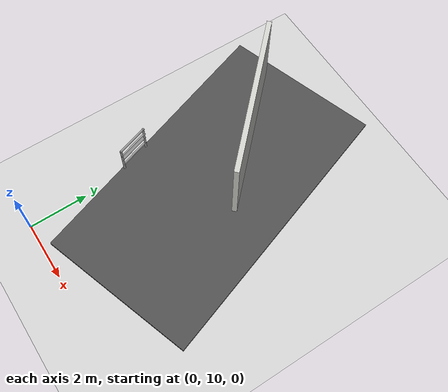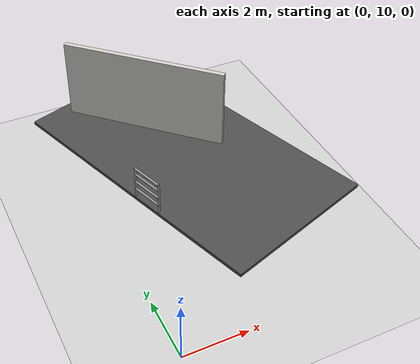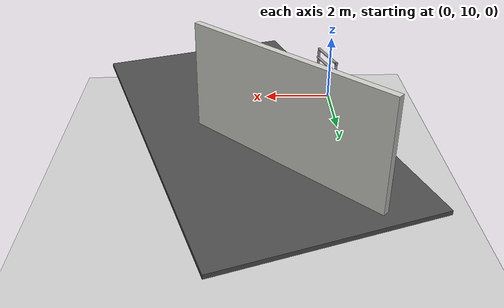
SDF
<sdf version="1.6">
 <world name="default">
  <model name="ground_plane">
   <static>1</static>
   <link name="link">
    <collision name="collision">
     <geometry><plane><normal>0 0 1</normal><size>100 100</size></plane></geometry>
     <surface><friction><ode><mu>100</mu><mu2>50</mu2></ode></friction></surface>
    </collision>
    <visual name="visual">
     <cast_shadows>0</cast_shadows>
     <geometry><plane><normal>0 0 1</normal><size>100 100</size></plane></geometry>
     <material>
      <script><uri>file://media/materials/scripts/gazebo.material</uri><name>Gazebo/Grey</name></script>
     </material>
    </visual>
   </link>
  </model>
  <model name="Untitled_1_0_clone_clone_0">
   <pose>0.845159 15.7579 2.03023 0 -0 2.36363</pose>
   <link name="Wall_16">
    <collision name="Wall_16_Collision">
     <geometry><box><size>5 0.15 2.5</size></box></geometry>
     <pose>0 0 1.25 0 -0 0</pose>
    </collision>
    <visual name="Wall_16_Visual">
     <pose>0 0 1.25 0 -0 0</pose>
     <geometry><box><size>5 0.15 2.5</size></box></geometry>
     <material>
      <script><uri>file://media/materials/scripts/gazebo.material</uri><name>Gazebo/CeilingTiled</name></script>
      <ambient>1 1 1 1</ambient>
     </material>
     <meta><layer>0</layer></meta>
    </visual>
    <pose>0 -1.66958 0 0 -0 0</pose>
   </link>
   <static>1</static>
  </model>
  <model name="indoor_fence_2">
   <link name="link">
    <inertial>
     <mass>1</mass>
     <inertia><ixx>0.145833</ixx><ixy>0</ixy><ixz>0</ixz><iyy>0.145833</iyy><iyz>0</iyz><izz>0.125</izz></inertia>
    </inertial>
    <pose>0.071704 -0.128855 0 0 -0 0</pose>
    <visual name="visual">
     <geometry><cylinder><radius>0.0332942</radius><length>1</length></cylinder></geometry>
     <material>
      <script><name>Gazebo/Grey</name><uri>file://media/materials/scripts/gazebo.material</uri></script>
      <shader type="pixel"/>
     </material>
    </visual>
    <collision name="collision">
     <geometry><cylinder><radius>0.033294</radius><length>1</length></cylinder></geometry>
     <surface>
      <friction>
       <ode><mu>1</mu><mu2>1</mu2><fdir1>0 0 0</fdir1><slip1>0</slip1><slip2>0</slip2></ode>
       <torsional>
        <coefficient>1</coefficient>
        <patch_radius>0</patch_radius>
        <surface_radius>0</surface_radius>
        <use_patch_radius>1</use_patch_radius>
        <ode><slip>0</slip></ode>
       </torsional>
      </friction>
      <bounce><restitution_coefficient>0</restitution_coefficient><threshold>1e+06</threshold></bounce>
      <contact>
       <collide_without_contact>0</collide_without_contact>
       <collide_without_contact_bitmask>1</collide_without_contact_bitmask>
       <collide_bitmask>1</collide_bitmask>
       <ode>
        <soft_cfm>0</soft_cfm>
        <soft_erp>0.2</soft_erp>
        <kp>1e+13</kp>
        <kd>1</kd>
        <max_vel>0.01</max_vel>
        <min_depth>0</min_depth>
       </ode>
       <bullet>
        <split_impulse>1</split_impulse>
        <split_impulse_penetration_threshold>-0.01</split_impulse_penetration_threshold>
        <soft_cfm>0</soft_cfm>
        <soft_erp>0.2</soft_erp>
        <kp>1e+13</kp>
        <kd>1</kd>
       </bullet>
      </contact>
     </surface>
    </collision>
   </link>
   <link name="link_clone">
    <inertial>
     <mass>1</mass>
     <inertia><ixx>0.145833</ixx><ixy>0</ixy><ixz>0</ixz><iyy>0.145833</iyy><iyz>0</iyz><izz>0.125</izz></inertia>
    </inertial>
    <pose>0.369391 -1.02864 0 0 -0 0</pose>
    <visual name="visual">
     <geometry><cylinder><radius>0.0332942</radius><length>1</length></cylinder></geometry>
     <material>
      <script><name>Gazebo/Grey</name><uri>file://media/materials/scripts/gazebo.material</uri></script>
      <shader type="pixel"/>
     </material>
    </visual>
    <collision name="collision">
     <geometry><cylinder><radius>0.033294</radius><length>1</length></cylinder></geometry>
     <surface>
      <friction>
       <ode><mu>1</mu><mu2>1</mu2><fdir1>0 0 0</fdir1><slip1>0</slip1><slip2>0</slip2></ode>
       <torsional>
        <coefficient>1</coefficient>
        <patch_radius>0</patch_radius>
        <surface_radius>0</surface_radius>
        <use_patch_radius>1</use_patch_radius>
        <ode><slip>0</slip></ode>
       </torsional>
      </friction>
      <bounce><restitution_coefficient>0</restitution_coefficient><threshold>1e+06</threshold></bounce>
      <contact>
       <collide_without_contact>0</collide_without_contact>
       <collide_without_contact_bitmask>1</collide_without_contact_bitmask>
       <collide_bitmask>1</collide_bitmask>
       <ode>
        <soft_cfm>0</soft_cfm>
        <soft_erp>0.2</soft_erp>
        <kp>1e+13</kp>
        <kd>1</kd>
        <max_vel>0.01</max_vel>
        <min_depth>0</min_depth>
       </ode>
       <bullet>
        <split_impulse>1</split_impulse>
        <split_impulse_penetration_threshold>-0.01</split_impulse_penetration_threshold>
        <soft_cfm>0</soft_cfm>
        <soft_erp>0.2</soft_erp>
        <kp>1e+13</kp>
        <kd>1</kd>
       </bullet>
      </contact>
     </surface>
    </collision>
   </link>
   <link name="link_clone_0">
    <inertial>
     <mass>1</mass>
     <inertia><ixx>0.145833</ixx><ixy>0</ixy><ixz>0</ixz><iyy>0.145833</iyy><iyz>0</iyz><izz>0.125</izz></inertia>
    </inertial>
    <pose>0.220035 -0.575022 -0.262394 -1.57275 0.000646 0.319166</pose>
    <visual name="visual">
     <geometry><cylinder><radius>0.0332942</radius><length>1</length></cylinder></geometry>
     <material>
      <script><name>Gazebo/Grey</name><uri>file://media/materials/scripts/gazebo.material</uri></script>
      <shader type="pixel"/>
     </material>
    </visual>
    <collision name="collision">
     <geometry><cylinder><radius>0.033294</radius><length>1</length></cylinder></geometry>
     <surface>
      <friction>
       <ode><mu>1</mu><mu2>1</mu2><fdir1>0 0 0</fdir1><slip1>0</slip1><slip2>0</slip2></ode>
       <torsional>
        <coefficient>1</coefficient>
        <patch_radius>0</patch_radius>
        <surface_radius>0</surface_radius>
        <use_patch_radius>1</use_patch_radius>
        <ode><slip>0</slip></ode>
       </torsional>
      </friction>
      <bounce><restitution_coefficient>0</restitution_coefficient><threshold>1e+06</threshold></bounce>
      <contact>
       <collide_without_contact>0</collide_without_contact>
       <collide_without_contact_bitmask>1</collide_without_contact_bitmask>
       <collide_bitmask>1</collide_bitmask>
       <ode>
        <soft_cfm>0</soft_cfm>
        <soft_erp>0.2</soft_erp>
        <kp>1e+13</kp>
        <kd>1</kd>
        <max_vel>0.01</max_vel>
        <min_depth>0</min_depth>
       </ode>
       <bullet>
        <split_impulse>1</split_impulse>
        <split_impulse_penetration_threshold>-0.01</split_impulse_penetration_threshold>
        <soft_cfm>0</soft_cfm>
        <soft_erp>0.2</soft_erp>
        <kp>1e+13</kp>
        <kd>1</kd>
       </bullet>
      </contact>
     </surface>
    </collision>
   </link>
   <link name="link_clone_0_clone">
    <inertial>
     <mass>1</mass>
     <inertia><ixx>0.145833</ixx><ixy>0</ixy><ixz>0</ixz><iyy>0.145833</iyy><iyz>0</iyz><izz>0.125</izz></inertia>
    </inertial>
    <pose>0.220715 -0.57597 9e-06 -1.57275 0.000646 0.319166</pose>
    <visual name="visual">
     <geometry><cylinder><radius>0.0332942</radius><length>1</length></cylinder></geometry>
     <material>
      <script><name>Gazebo/Grey</name><uri>file://media/materials/scripts/gazebo.material</uri></script>
      <shader type="pixel"/>
     </material>
    </visual>
    <collision name="collision">
     <geometry><cylinder><radius>0.033294</radius><length>1</length></cylinder></geometry>
     <surface>
      <friction>
       <ode><mu>1</mu><mu2>1</mu2><fdir1>0 0 0</fdir1><slip1>0</slip1><slip2>0</slip2></ode>
       <torsional>
        <coefficient>1</coefficient>
        <patch_radius>0</patch_radius>
        <surface_radius>0</surface_radius>
        <use_patch_radius>1</use_patch_radius>
        <ode><slip>0</slip></ode>
       </torsional>
      </friction>
      <bounce><restitution_coefficient>0</restitution_coefficient><threshold>1e+06</threshold></bounce>
      <contact>
       <collide_without_contact>0</collide_without_contact>
       <collide_without_contact_bitmask>1</collide_without_contact_bitmask>
       <collide_bitmask>1</collide_bitmask>
       <ode>
        <soft_cfm>0</soft_cfm>
        <soft_erp>0.2</soft_erp>
        <kp>1e+13</kp>
        <kd>1</kd>
        <max_vel>0.01</max_vel>
        <min_depth>0</min_depth>
       </ode>
       <bullet>
        <split_impulse>1</split_impulse>
        <split_impulse_penetration_threshold>-0.01</split_impulse_penetration_threshold>
        <soft_cfm>0</soft_cfm>
        <soft_erp>0.2</soft_erp>
        <kp>1e+13</kp>
        <kd>1</kd>
       </bullet>
      </contact>
     </surface>
    </collision>
   </link>
   <link name="link_clone_0_clone_0">
    <inertial>
     <mass>1</mass>
     <inertia><ixx>0.145833</ixx><ixy>0</ixy><ixz>0</ixz><iyy>0.145833</iyy><iyz>0</iyz><izz>0.125</izz></inertia>
    </inertial>
    <pose>0.236881 -0.573625 0.245272 -1.57275 0.000646 0.319166</pose>
    <visual name="visual">
     <geometry><cylinder><radius>0.0332942</radius><length>1</length></cylinder></geometry>
     <material>
      <script><name>Gazebo/Grey</name><uri>file://media/materials/scripts/gazebo.material</uri></script>
      <shader type="pixel"/>
     </material>
    </visual>
    <collision name="collision">
     <geometry><cylinder><radius>0.033294</radius><length>1</length></cylinder></geometry>
     <surface>
      <friction>
       <ode><mu>1</mu><mu2>1</mu2><fdir1>0 0 0</fdir1><slip1>0</slip1><slip2>0</slip2></ode>
       <torsional>
        <coefficient>1</coefficient>
        <patch_radius>0</patch_radius>
        <surface_radius>0</surface_radius>
        <use_patch_radius>1</use_patch_radius>
        <ode><slip>0</slip></ode>
       </torsional>
      </friction>
      <bounce><restitution_coefficient>0</restitution_coefficient><threshold>1e+06</threshold></bounce>
      <contact>
       <collide_without_contact>0</collide_without_contact>
       <collide_without_contact_bitmask>1</collide_without_contact_bitmask>
       <collide_bitmask>1</collide_bitmask>
       <ode>
        <soft_cfm>0</soft_cfm>
        <soft_erp>0.2</soft_erp>
        <kp>1e+13</kp>
        <kd>1</kd>
        <max_vel>0.01</max_vel>
        <min_depth>0</min_depth>
       </ode>
       <bullet>
        <split_impulse>1</split_impulse>
        <split_impulse_penetration_threshold>-0.01</split_impulse_penetration_threshold>
        <soft_cfm>0</soft_cfm>
        <soft_erp>0.2</soft_erp>
        <kp>1e+13</kp>
        <kd>1</kd>
       </bullet>
      </contact>
     </surface>
    </collision>
   </link>
   <link name="link_clone_0_clone_1">
    <inertial>
     <mass>1</mass>
     <inertia><ixx>0.145833</ixx><ixy>0</ixy><ixz>0</ixz><iyy>0.145833</iyy><iyz>0</iyz><izz>0.125</izz></inertia>
    </inertial>
    <pose>0.215457 -0.570916 0.471531 -1.57275 0.000646 0.319166</pose>
    <visual name="visual">
     <geometry><cylinder><radius>0.0332942</radius><length>1</length></cylinder></geometry>
     <material>
      <script><name>Gazebo/Grey</name><uri>file://media/materials/scripts/gazebo.material</uri></script>
      <shader type="pixel"/>
     </material>
    </visual>
    <collision name="collision">
     <geometry><cylinder><radius>0.033294</radius><length>1</length></cylinder></geometry>
     <surface>
      <friction>
       <ode><mu>1</mu><mu2>1</mu2><fdir1>0 0 0</fdir1><slip1>0</slip1><slip2>0</slip2></ode>
       <torsional>
        <coefficient>1</coefficient>
        <patch_radius>0</patch_radius>
        <surface_radius>0</surface_radius>
        <use_patch_radius>1</use_patch_radius>
        <ode><slip>0</slip></ode>
       </torsional>
      </friction>
      <bounce><restitution_coefficient>0</restitution_coefficient><threshold>1e+06</threshold></bounce>
      <contact>
       <collide_without_contact>0</collide_without_contact>
       <collide_without_contact_bitmask>1</collide_without_contact_bitmask>
       <collide_bitmask>1</collide_bitmask>
       <ode>
        <soft_cfm>0</soft_cfm>
        <soft_erp>0.2</soft_erp>
        <kp>1e+13</kp>
        <kd>1</kd>
        <max_vel>0.01</max_vel>
        <min_depth>0</min_depth>
       </ode>
       <bullet>
        <split_impulse>1</split_impulse>
        <split_impulse_penetration_threshold>-0.01</split_impulse_penetration_threshold>
        <soft_cfm>0</soft_cfm>
        <soft_erp>0.2</soft_erp>
        <kp>1e+13</kp>
        <kd>1</kd>
       </bullet>
      </contact>
     </surface>
    </collision>
   </link>
   <static>1</static>
   <pose>0.482181 14.2656 2.56606 0 -0 0</pose>
  </model>
  <model name="asphalt_plane_clone">
   <link name="link">
    <inertial>
     <inertia><ixx>0</ixx><ixy>0</ixy><ixz>0</ixz><iyy>0</iyy><iyz>0</iyz><izz>0</izz></inertia>
     <mass>0</mass>
    </inertial>
    <pose>0.097563 -0.881594 0 0 0 -0.111059</pose>
    <visual name="visual">
     <cast_shadows>0</cast_shadows>
     <geometry><box><size>4.8823 8.82874 0.1</size></box></geometry>
     <material>
      <script>
       <uri>model://asphalt_plane/materials/scripts</uri>
       <uri>model://asphalt_plane/materials/textures</uri>
       <name>vrc/asphalt</name>
      </script>
      <shader type="pixel"/>
     </material>
    </visual>
    <collision name="collision">
     <geometry><box><size>4.8823 8.82874 0.1</size></box></geometry>
     <surface>
      <friction>
       <ode><mu>1</mu><mu2>1</mu2><fdir1>0 0 0</fdir1><slip1>0</slip1><slip2>0</slip2></ode>
       <torsional>
        <coefficient>1</coefficient>
        <patch_radius>0</patch_radius>
        <surface_radius>0</surface_radius>
        <use_patch_radius>1</use_patch_radius>
        <ode><slip>0</slip></ode>
       </torsional>
      </friction>
      <bounce><restitution_coefficient>0</restitution_coefficient><threshold>1e+06</threshold></bounce>
      <contact>
       <collide_without_contact>0</collide_without_contact>
       <collide_without_contact_bitmask>1</collide_without_contact_bitmask>
       <collide_bitmask>1</collide_bitmask>
       <ode>
        <soft_cfm>0</soft_cfm>
        <soft_erp>0.2</soft_erp>
        <kp>1e+13</kp>
        <kd>1</kd>
        <max_vel>0.01</max_vel>
        <min_depth>0</min_depth>
       </ode>
       <bullet>
        <split_impulse>1</split_impulse>
        <split_impulse_penetration_threshold>-0.01</split_impulse_penetration_threshold>
        <soft_cfm>0</soft_cfm>
        <soft_erp>0.2</soft_erp>
        <kp>1e+13</kp>
        <kd>1</kd>
       </bullet>
      </contact>
     </surface>
    </collision>
   </link>
   <static>1</static>
   <pose>2.22353 15.9953 2.01114 0 -0 0.438323</pose>
  </model>
 </world>
</sdf>
